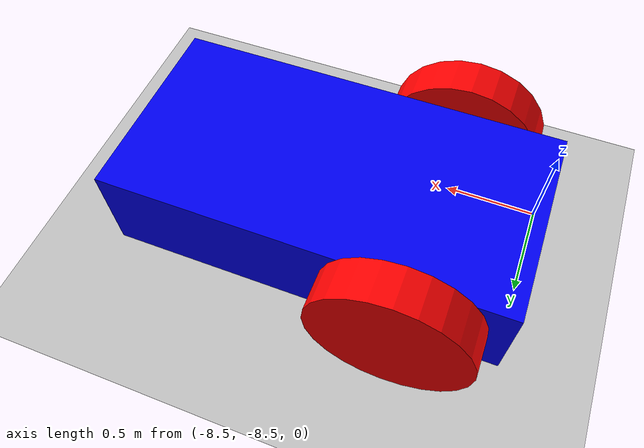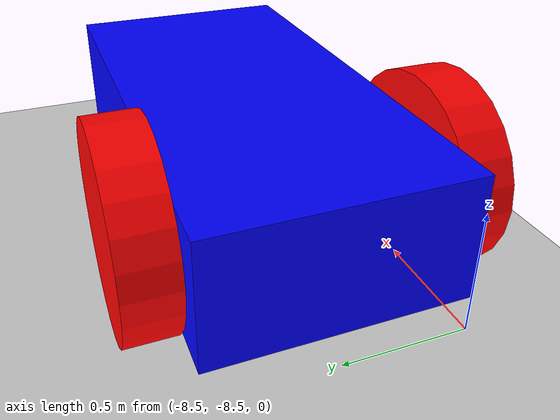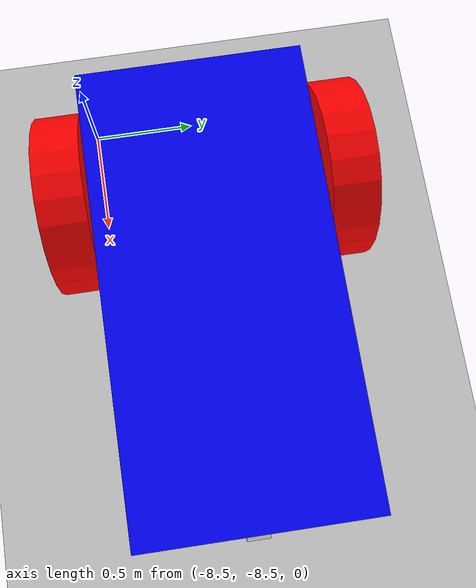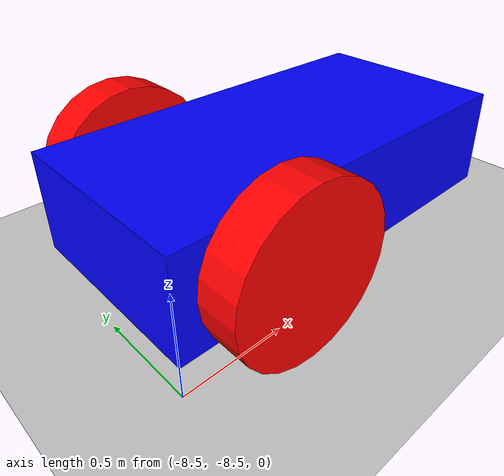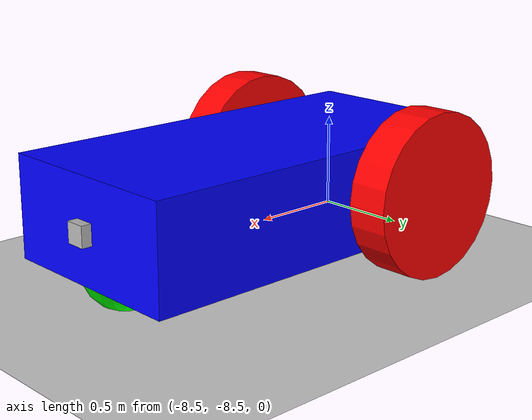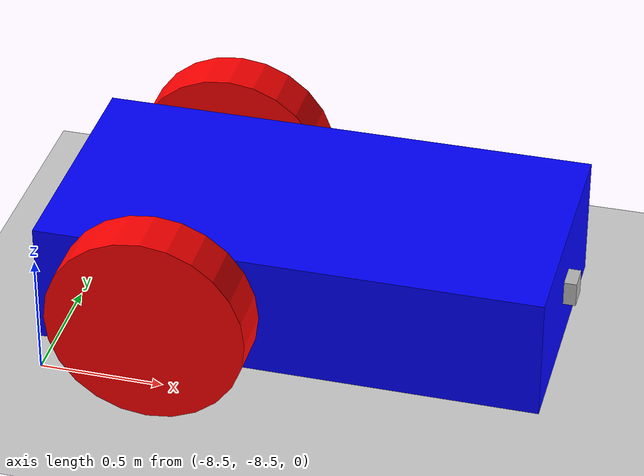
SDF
<?xml version="1.0" ?>
<sdf version="1.8">
    <world name="Moving_robot">
        <physics name="1ms" type="ignored">
            <max_step_size>0.001</max_step_size>
            <real_time_factor>1.0</real_time_factor>
        </physics>
        <plugin
            filename="gz-sim-physics-system"
            name="gz::sim::systems::Physics">
        </plugin>
        <plugin
            filename="gz-sim-user-commands-system"
            name="gz::sim::systems::UserCommands">
        </plugin>
        <plugin
            filename="gz-sim-scene-broadcaster-system"
            name="gz::sim::systems::SceneBroadcaster">
        </plugin>

        <plugin
          filename="gz-sim-sensors-system"
          name="gz::sim::systems::Sensors">
          <render_engine>ogre2</render_engine>
        </plugin>

        <light type="directional" name="sun">
            <cast_shadows>true</cast_shadows>
            <pose>0 0 10 0 0 0</pose>
            <diffuse>0.8 0.8 0.8 1</diffuse>
            <specular>0.2 0.2 0.2 1</specular>
            <attenuation>
                <range>1000</range>
                <constant>0.9</constant>
                <linear>0.01</linear>
                <quadratic>0.001</quadratic>
            </attenuation>
            <direction>-0.5 0.1 -0.9</direction>
        </light>

        <model name="ground_plane">
            <static>true</static>
            <link name="link">
                <collision name="collision">
                <geometry>
                    <plane>
                    <normal>0 0 1</normal>
                    </plane>
                </geometry>
                </collision>
                <visual name="visual">
                <geometry>
                    <plane>
                    <normal>0 0 1</normal>
                    <size>100 100</size>
                    </plane>
                </geometry>
                <material>
                    <ambient>0.8 0.8 0.8 1</ambient>
                    <diffuse>0.8 0.8 0.8 1</diffuse>
                    <specular>0.8 0.8 0.8 1</specular>
                </material>
                </visual>
            </link>
        </model>

        <model name='vehicle_blue' canonical_link='chassis'>
            <pose relative_to='world'>-8 -8 0 0 0 0</pose>   <!--the pose is relative to the world by default-->

            <plugin
                filename="gz-sim-pose-publisher-system"
                name="gz::sim::systems::PosePublisher">
                <use_pose_vector_msg>true</use_pose_vector_msg>
                <publish_nested_model_pose>true</publish_nested_model_pose>
            </plugin>

            <link name='chassis'>
                <pose relative_to='__model__'>0.5 0 0.4 0 0 0</pose>
                <inertial> <!--inertial properties of the link mass, inertia matix-->
                    <mass>1.14395</mass>
                    <inertia>
                        <ixx>0.126164</ixx>
                        <ixy>0</ixy>
                        <ixz>0</ixz>
                        <iyy>0.416519</iyy>
                        <iyz>0</iyz>
                        <izz>0.481014</izz>
                    </inertia>
                </inertial>
                <visual name='visual'>
                    <geometry>
                        <box>
                            <size>2.0 1.0 0.5</size> <!--question: this size is in meter-->
                        </box>
                    </geometry>
                    <!--let's add color to our link-->
                    <material>
                        <ambient>0.0 0.0 1.0 1</ambient>
                        <diffuse>0.0 0.0 1.0 1</diffuse>
                        <specular>0.0 0.0 1.0 1</specular>
                    </material>
                </visual>
                <collision name='collision'> <!--todo: describe why we need the collision-->
                    <geometry>
                        <box>
                            <size>2.0 1.0 0.5</size>
                        </box>
                    </geometry>
                </collision>
            </link>

            <!-- Attach a camera to the nose of the bot -->
            <link name="camera">
                <pose relative_to="chassis">1.0 0 0 0 0 0</pose>
                <inertial>
                  <mass>0.1</mass>
                  <inertia>
                    <ixx>0.000166667</ixx>
                    <iyy>0.000166667</iyy>
                    <izz>0.000166667</izz>
                  </inertia>
                </inertial>
                <collision name="collision">
                  <geometry>
                    <box>
                      <size>0.1 0.1 0.1</size>
                    </box>
                  </geometry>
                </collision>
                <visual name="visual">
                  <geometry>
                    <box>
                      <size>0.1 0.1 0.1</size>
                    </box>
                  </geometry>
                </visual>
                <sensor name="camera" type="camera">
                  <camera>
                    <horizontal_fov>1.047</horizontal_fov>
                    <image>
                      <width>1280</width>
                      <height>720</height>
                    </image>
                    <clip>
                      <near>0.1</near>
                      <far>100</far>
                    </clip>
                  </camera>
                  <always_on>1</always_on>
                  <update_rate>30</update_rate>
                  <visualize>true</visualize>
                  <topic>camera</topic>
                </sensor>
              </link>

            <joint name="camera_joint" type="fixed">
                <parent>chassis</parent>
                <child>camera</child>
            </joint>

            <!--let's build the left wheel-->
            <link name='left_wheel'>
                <pose relative_to="chassis">-0.5 0.6 0 -1.5707 0 0</pose> <!--angles are in radian-->
                <inertial>
                    <mass>2</mass>
                    <inertia>
                        <ixx>0.145833</ixx>
                        <ixy>0</ixy>
                        <ixz>0</ixz>
                        <iyy>0.145833</iyy>
                        <iyz>0</iyz>
                        <izz>0.125</izz>
                    </inertia>
                </inertial>
                <visual name='visual'>
                    <geometry>
                        <cylinder>
                            <radius>0.4</radius>
                            <length>0.2</length>
                        </cylinder>
                    </geometry>
                    <material>
                        <ambient>1.0 0.0 0.0 1</ambient>
                        <diffuse>1.0 0.0 0.0 1</diffuse>
                        <specular>1.0 0.0 0.0 1</specular>
                    </material>
                </visual>
                <collision name='collision'>
                    <geometry>
                        <cylinder>
                            <radius>0.4</radius>
                            <length>0.2</length>
                        </cylinder>
                    </geometry>
                      <surface>
                    <friction>
                      <ode>
                        <mu>0.9</mu> <!-- Static friction -->
                        <mu2>0.7</mu2> <!-- Kinetic friction -->
                      </ode>
                    </friction>
                  </surface>
                </collision>
            </link>

            <!--copy and paste for right wheel but change position-->
            <link name='right_wheel'>
                <pose relative_to="chassis">-0.5 -0.6 0 -1.5707 0 0</pose> <!--angles are in radian-->
                <inertial>
                    <mass>1</mass>
                    <inertia>
                        <ixx>0.145833</ixx>
                        <ixy>0</ixy>
                        <ixz>0</ixz>
                        <iyy>0.145833</iyy>
                        <iyz>0</iyz>
                        <izz>0.125</izz>
                    </inertia>
                </inertial>
                <visual name='visual'>
                    <geometry>
                        <cylinder>
                            <radius>0.4</radius>
                            <length>0.2</length>
                        </cylinder>
                    </geometry>
                    <material>
                        <ambient>1.0 0.0 0.0 1</ambient>
                        <diffuse>1.0 0.0 0.0 1</diffuse>
                        <specular>1.0 0.0 0.0 1</specular>
                    </material>
                </visual>
                <collision name='collision'>
                    <geometry>
                        <cylinder>
                            <radius>0.4</radius>
                            <length>0.2</length>
                        </cylinder>
                    </geometry>
                      <surface>
                    <friction>
                      <ode>
                        <mu>0.9</mu> <!-- Static friction -->
                        <mu2>0.7</mu2> <!-- Kinetic friction -->
                      </ode>
                    </friction>
                  </surface>
                </collision>
            </link>

            <frame name="caster_frame" attached_to='chassis'>
                <pose>0.8 0 -0.2 0 0 0</pose>
            </frame>

            <!--caster wheel-->
            <link name='caster'>
                <pose relative_to='caster_frame'/>
                <inertial>
                    <mass>1</mass>
                    <inertia>
                        <ixx>0.1</ixx>
                        <ixy>0</ixy>
                        <ixz>0</ixz>
                        <iyy>0.1</iyy>
                        <iyz>0</iyz>
                        <izz>0.1</izz>
                    </inertia>
                </inertial>
                <visual name='visual'>
                    <geometry>
                        <sphere>
                            <radius>0.2</radius>
                        </sphere>
                    </geometry>
                    <material>
                        <ambient>0.0 1 0.0 1</ambient>
                        <diffuse>0.0 1 0.0 1</diffuse>
                        <specular>0.0 1 0.0 1</specular>
                    </material>
                </visual>
                <collision name='collision'>
                    <geometry>
                        <sphere>
                            <radius>0.2</radius>
                        </sphere>
                    </geometry>
                </collision>
            </link>

            <!--connecting these links together using joints-->
            <joint name='left_wheel_joint' type='revolute'> <!--continous joint is not supported yet-->
                <pose relative_to='left_wheel'/>
                <parent>chassis</parent>
                <child>left_wheel</child>
                <axis>
                    <xyz expressed_in='__model__'>0 1 0</xyz> <!--can be defined as any frame or even arbitrary frames-->
                    <limit>
                        <lower>-1.79769e+308</lower>    <!--negative infinity-->
                        <upper>1.79769e+308</upper>     <!--positive infinity-->
                    </limit>
                </axis>
            </joint>

            <joint name='right_wheel_joint' type='revolute'>
                <pose relative_to='right_wheel'/>
                <parent>chassis</parent>
                <child>right_wheel</child>
                <axis>
                    <xyz expressed_in='__model__'>0 1 0</xyz>
                    <limit>
                        <lower>-1.79769e+308</lower>    <!--negative infinity-->
                        <upper>1.79769e+308</upper>     <!--positive infinity-->
                    </limit>
                </axis>
            </joint>

            <!--different type of joints ball joint--> <!--defult value is the child-->
            <joint name='caster_wheel' type='ball'>
                <parent>chassis</parent>
                <child>caster</child>
            </joint>

            <!--diff drive plugin-->
            <plugin
                filename="gz-sim-diff-drive-system"
                name="gz::sim::systems::DiffDrive">
                <left_joint>left_wheel_joint</left_joint>
                <right_joint>right_wheel_joint</right_joint>
                <wheel_separation>1.2</wheel_separation>
                <wheel_radius>0.4</wheel_radius>
                <odom_publish_frequency>100</odom_publish_frequency>
                <topic>cmd_vel</topic>
            </plugin>

        </model>

    </world>
</sdf>
